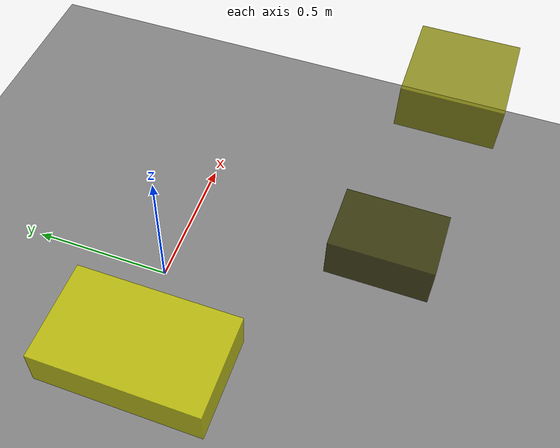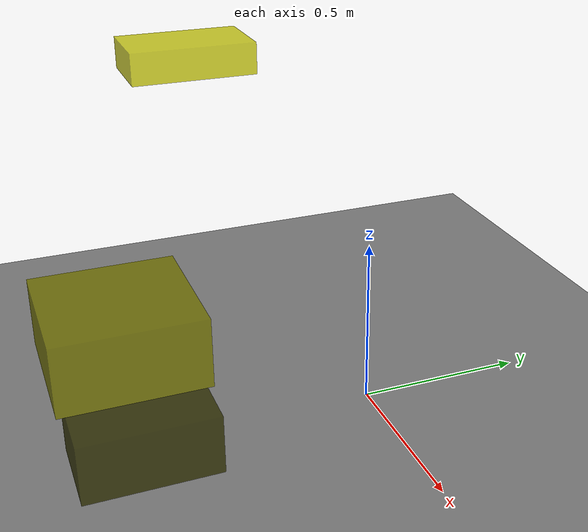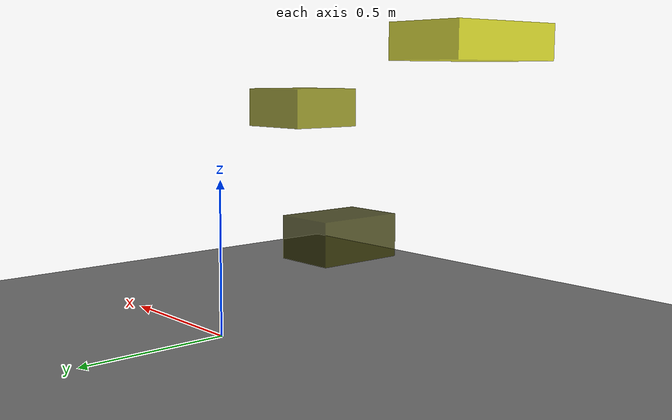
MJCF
<?xml version="1.0"?>
<mujoco model="obstacle_scene">
  <compiler angle="radian" coordinate="local"/>
  <option timestep="0.001" gravity="0 0 -9.81"/>

  <asset>
    <material name="obstacle_mat" rgba="0.8 0.8 0.0 0.8"/>
    <material name="ground_mat" rgba="0.5 0.5 0.5 1"/>
  </asset>

  <worldbody>
    <!-- Ground plane -->
    <geom name="ground" type="plane" size="3 3 0.1" material="ground_mat"/>

    <!-- Obstacles -->
    <body name="obstacle_0" pos="0.244791 -0.729939 0.209373">
      <geom name="obs_0" type="box" size="0.121604 0.180319 0.083009" rgba="0.2 0.2 0.0 0.8"/>
    </body>
    <body name="obstacle_1" pos="0.563993 -0.812865 0.691755">
      <geom name="obs_1" type="box" size="0.153261 0.155378 0.076504" rgba="0.5 0.5 0.0 0.8"/>
    </body>
    <body name="obstacle_2" pos="-0.716719 -0.327948 0.914372">
      <geom name="obs_2" type="box" size="0.120361 0.198719 0.050768" rgba="0.8 0.8 0.0 0.8"/>
    </body>
  </worldbody>
</mujoco>
